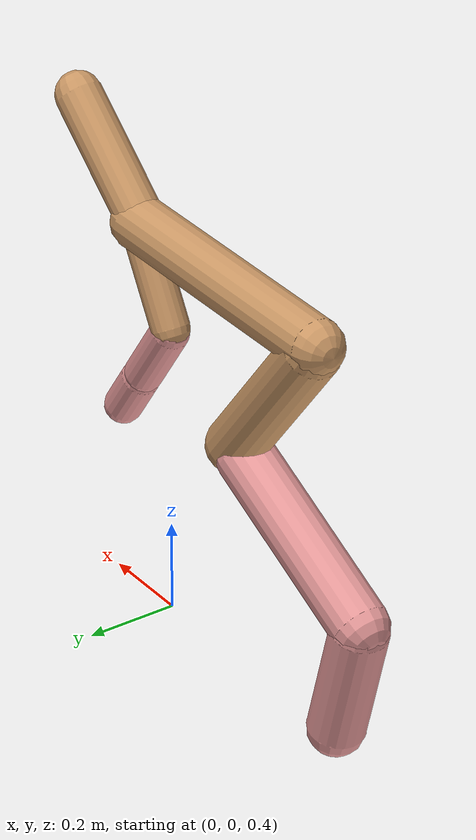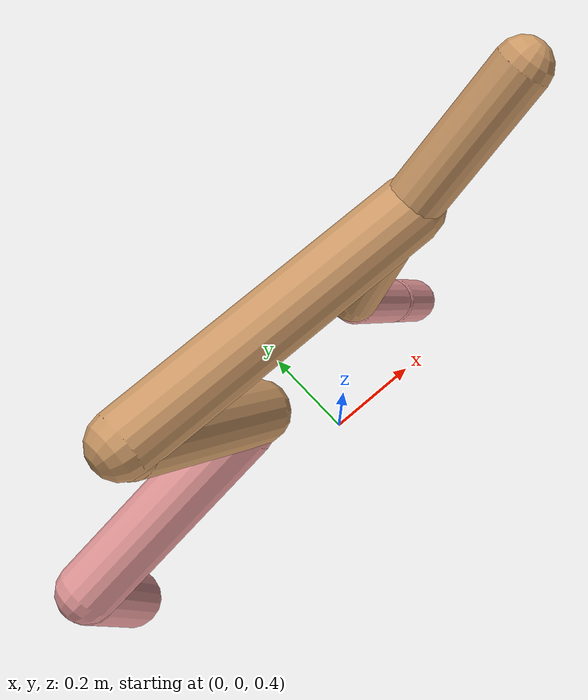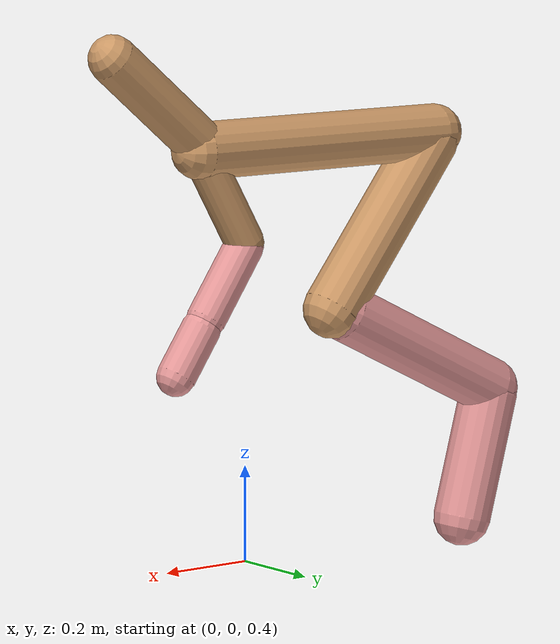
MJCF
<mujoco model="cheetah">
  <compiler angle="radian" coordinate="local" inertiafromgeom="true" settotalmass="14" />
  <default>
    <joint armature=".1" damping=".01" limited="true" solimplimit="0 .8 .03" solreflimit=".02 1" stiffness="8" />
    <geom conaffinity="0" condim="3" contype="1" friction="0.8 .1 .1" rgba="0.8 0.6 .4 1" solimp="0.0 0.8 0.01" solref="0.02 1" />
    <motor ctrllimited="true" ctrlrange="-1 1" />
  </default>
  <size nstack="300000" nuser_geom="1" />
  <option gravity="0 0 -9.81" timestep="0.01" />
  <worldbody>
    <body name="torso" pos="0.0 0.0 1.2562934386791138">
      <joint armature="0" axis="1 0 0" damping="0" limited="false" name="ignorex" pos="0 0 0" stiffness="0" type="slide" />
      <joint armature="0" axis="0 0 1" damping="0" limited="false" name="ignorez" pos="0 0 0" stiffness="0" type="slide" />
      <joint armature="0" axis="0 1 0" damping="0" limited="false" name="ignorey" pos="0 0 0" stiffness="0" type="hinge" />
      <geom fromto="-0.5 0.0 0.0 0.11225845897653597 0.0 0.0" name="torso" size="0.05926105505378736" type="capsule" />
      <geom axisangle="0 1 0 .87" name="head" pos="0.21225845897653595 0.0 0.1" size="0.04983025670159027 0.15" type="capsule" />

      <body name="bthigh" pos="-.5 0 0">
        <joint axis="0 1 0" damping="6" name="bthigh" pos="0 0 0" range="-.52 1.05" stiffness="240" type="hinge" />
        <geom axisangle="0 1 0 -3.8" name="bthigh" pos="0.14167866430859868 0.0 -0.1841822636011783" size="0.06137412875600744 0.21335809204107753" type="capsule" />
        <body name="bshin" pos="0.2433573286171974 0.0 -0.35836452720235656">
          <joint axis="0 1 0" damping="4.5" name="bshin" pos="0 0 0" range="-.785 .785" stiffness="180" type="hinge" />
          <geom axisangle="0 1 0 -2.03" name="bshin" pos="-0.20324965818594626 0.0 -0.10162482909297313" rgba="0.9 0.6 0.6 1" size="0.06137412875600744 0.2207152676287009" type="capsule" />
          <body name="bfoot" pos="-0.4064993163718925 0.0 -0.20324965818594626">
            <joint axis="0 1 0" damping="3" name="bfoot" pos="0 0 0" range="-.4 .785" stiffness="120" type="hinge" />
            <geom axisangle="0 1 0 -.27" name="bfoot" pos="0.04309371153377026 0.0 -0.1393363339591905" rgba="0.9 0.6 0.6 1" size="0.06137412875600744 0.13831490104731922" type="capsule" />
            <inertial mass="10" />
          </body>
        </body>
      </body>
      <body name="fthigh" pos="0.11225845897653597 0.0 0.0">
        <joint axis="0 1 0" damping="4.5" name="fthigh" pos="0 0 0" range="-1.5 0.8" stiffness="180" type="hinge" />
        <geom axisangle="0 1 0 .52" name="fthigh" pos="-0.05792019539546815 0.0 -0.09929176353508826" size="0.0407704989876223 0.10902599873257764" type="capsule" />
        <body name="fshin" pos="-0.1158403907909363 0.0 -0.1985835270701765">
          <joint axis="0 1 0" damping="3" name="fshin" pos="0 0 0" range="-1.2 1.1" stiffness="120" type="hinge" />
          <geom axisangle="0 1 0 -.6" name="fshin" pos="0.05381297416787656 0.0 -0.07451027192475215" rgba="0.9 0.6 0.6 1" size="0.0407704989876223 0.086892901245513" type="capsule" />
          <body name="ffoot" pos="0.10762594833575312 0.0 -0.1490205438495043">
            <joint axis="0 1 0" damping="1.5" name="ffoot" pos="0 0 0" range="-3.1 -0.3" stiffness="60" type="hinge" />
            <geom axisangle="0 1 0 -.6" name="ffoot" pos="0.03817677727393785 0.0 -0.0593860979816811" rgba="0.9 0.6 0.6 1" size="0.0407704989876223 0.0573821045960935" type="capsule" />
            <inertial mass="10" />
          </body>
        </body>
      </body>
    </body>
  </worldbody>
  <actuator>
    <motor gear="120" joint="bthigh" name="bthigh" />
    <motor gear="90" joint="bshin" name="bshin" />
    <motor gear="60" joint="bfoot" name="bfoot" />
    <motor gear="120" joint="fthigh" name="fthigh" />
    <motor gear="60" joint="fshin" name="fshin" />
    <motor gear="30" joint="ffoot" name="ffoot" />
  </actuator>
</mujoco>
